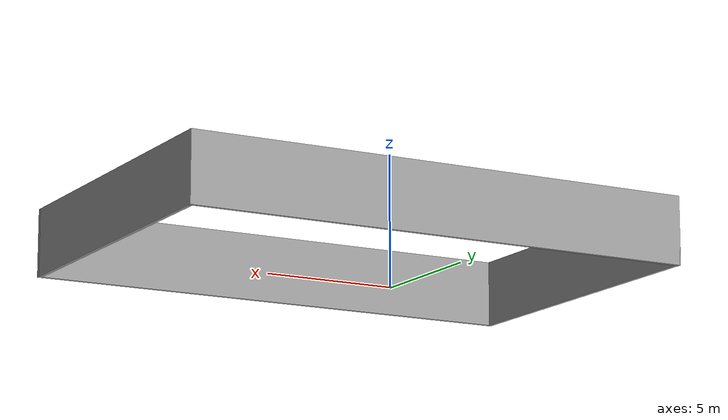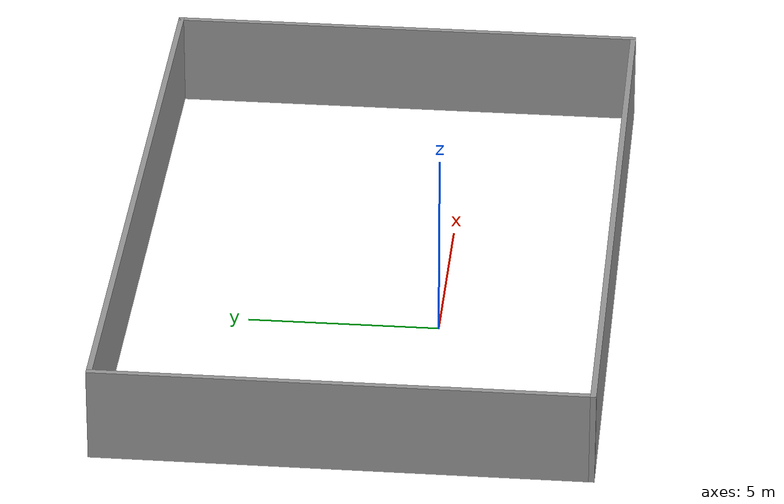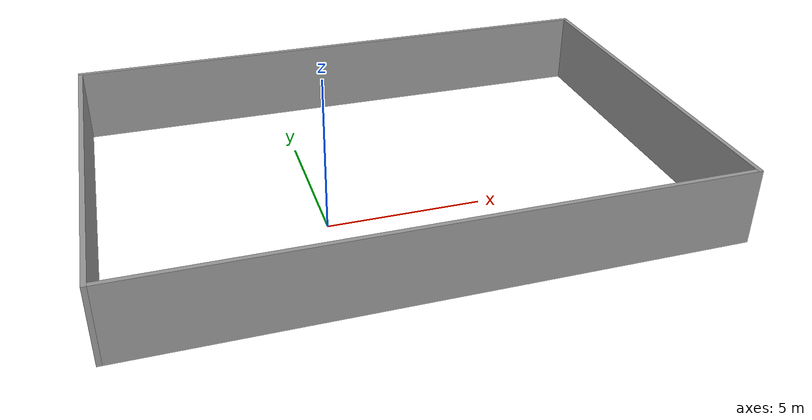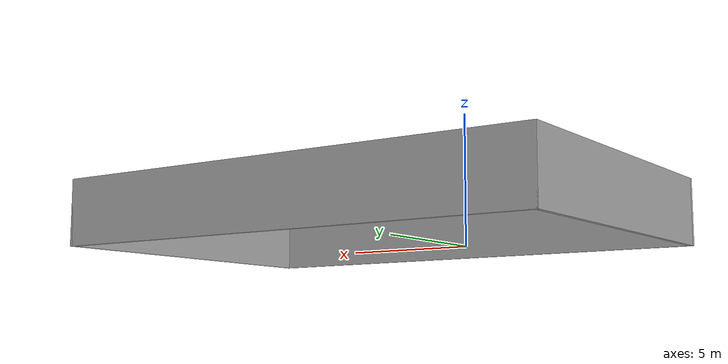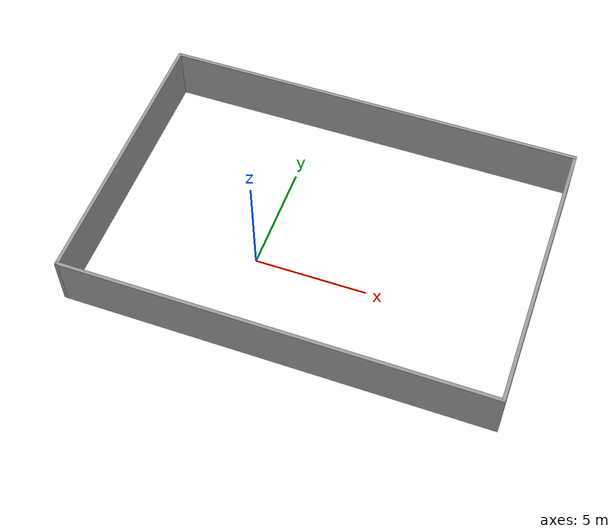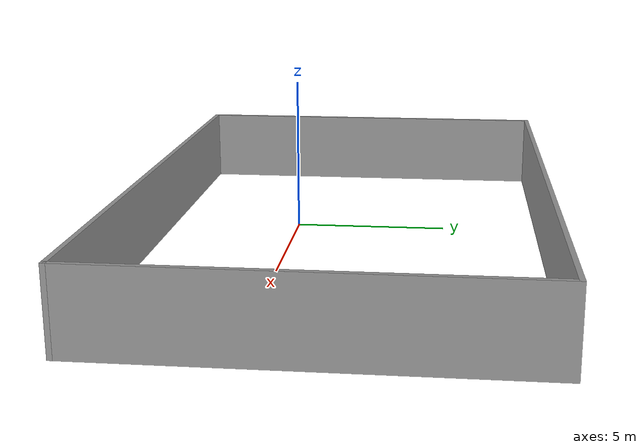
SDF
<?xml version='1.0'?>
<sdf version='1.7'>
  <model name='recinto'>
    <pose>2.47399 1.90374 0 0 -0 0</pose>
    <link name='Wall_12'>
      <collision name='Wall_12_Collision'>
        <geometry>
          <box>
            <size>19 0.15 2.5</size>
          </box>
        </geometry>
        <pose>0 0 1.25 0 -0 0</pose>
      </collision>
      <visual name='Wall_12_Visual'>
        <pose>0 0 1.25 0 -0 0</pose>
        <geometry>
          <box>
            <size>19 0.15 2.5</size>
          </box>
        </geometry>
        <material>
          <script>
            <uri>file://media/materials/scripts/gazebo.material</uri>
            <name>Gazebo/Grey</name>
          </script>
          <ambient>1 1 1 1</ambient>
        </material>
        <meta>
          <layer>0</layer>
        </meta>
      </visual>
      <pose>-0 6.3 0 0 -0 0</pose>
    </link>
    <link name='Wall_15'>
      <collision name='Wall_15_Collision'>
        <geometry>
          <box>
            <size>12.75 0.15 2.5</size>
          </box>
        </geometry>
        <pose>0 0 1.25 0 -0 0</pose>
      </collision>
      <visual name='Wall_15_Visual'>
        <pose>0 0 1.25 0 -0 0</pose>
        <geometry>
          <box>
            <size>12.75 0.15 2.5</size>
          </box>
        </geometry>
        <material>
          <script>
            <uri>file://media/materials/scripts/gazebo.material</uri>
            <name>Gazebo/Grey</name>
          </script>
          <ambient>1 1 1 1</ambient>
        </material>
        <meta>
          <layer>0</layer>
        </meta>
      </visual>
      <pose>9.425 0 0 0 -0 -1.5708</pose>
    </link>
    <link name='Wall_16'>
      <collision name='Wall_16_Collision'>
        <geometry>
          <box>
            <size>19 0.15 2.5</size>
          </box>
        </geometry>
        <pose>0 0 1.25 0 -0 0</pose>
      </collision>
      <visual name='Wall_16_Visual'>
        <pose>0 0 1.25 0 -0 0</pose>
        <geometry>
          <box>
            <size>19 0.15 2.5</size>
          </box>
        </geometry>
        <material>
          <script>
            <uri>file://media/materials/scripts/gazebo.material</uri>
            <name>Gazebo/Grey</name>
          </script>
          <ambient>1 1 1 1</ambient>
        </material>
        <meta>
          <layer>0</layer>
        </meta>
      </visual>
      <pose>-0 -6.3 0 0 -0 3.14159</pose>
    </link>
    <link name='Wall_17'>
      <collision name='Wall_17_Collision'>
        <geometry>
          <box>
            <size>12.75 0.15 2.5</size>
          </box>
        </geometry>
        <pose>0 0 1.25 0 -0 0</pose>
      </collision>
      <visual name='Wall_17_Visual'>
        <pose>0 0 1.25 0 -0 0</pose>
        <geometry>
          <box>
            <size>12.75 0.15 2.5</size>
          </box>
        </geometry>
        <material>
          <script>
            <uri>file://media/materials/scripts/gazebo.material</uri>
            <name>Gazebo/Grey</name>
          </script>
          <ambient>1 1 1 1</ambient>
        </material>
        <meta>
          <layer>0</layer>
        </meta>
      </visual>
      <pose>-9.425 0 0 0 -0 1.5708</pose>
    </link>
    <static>1</static>
  </model>
</sdf>
